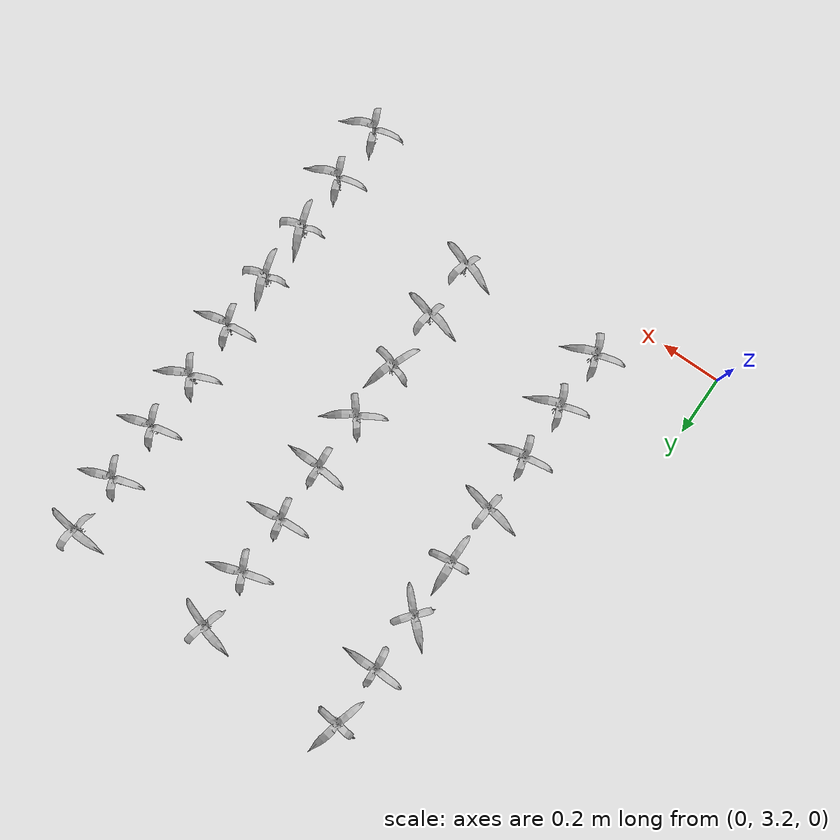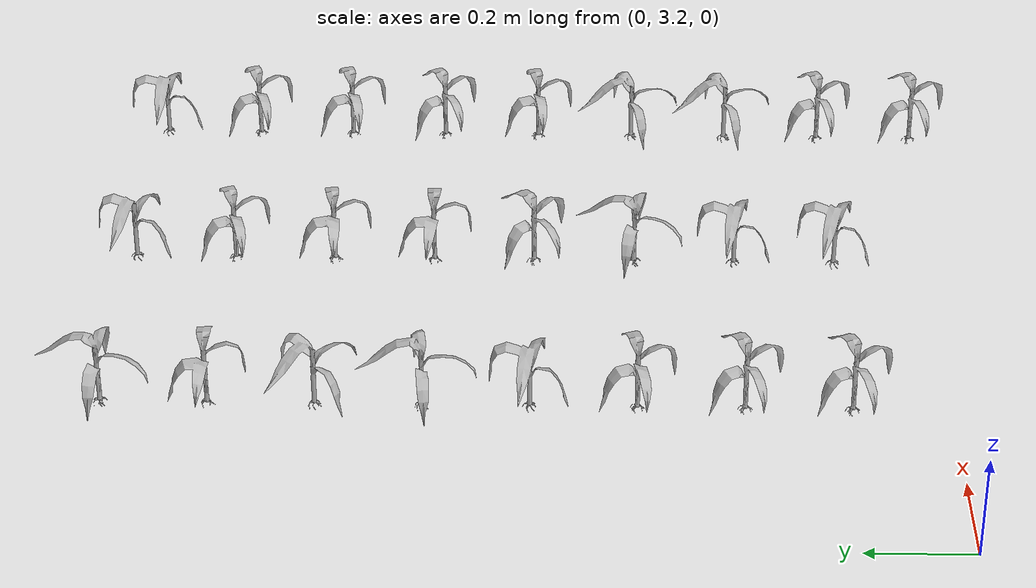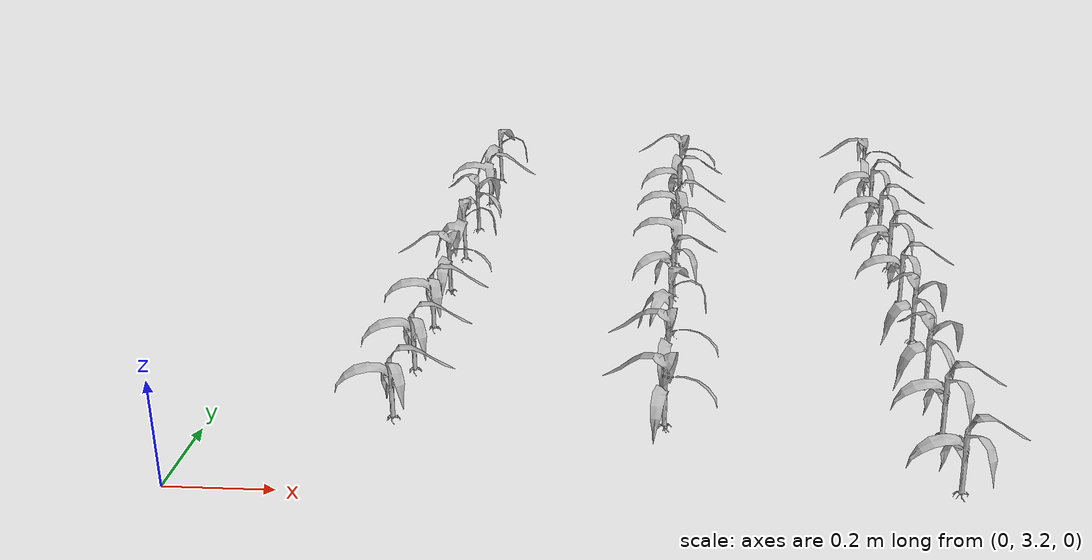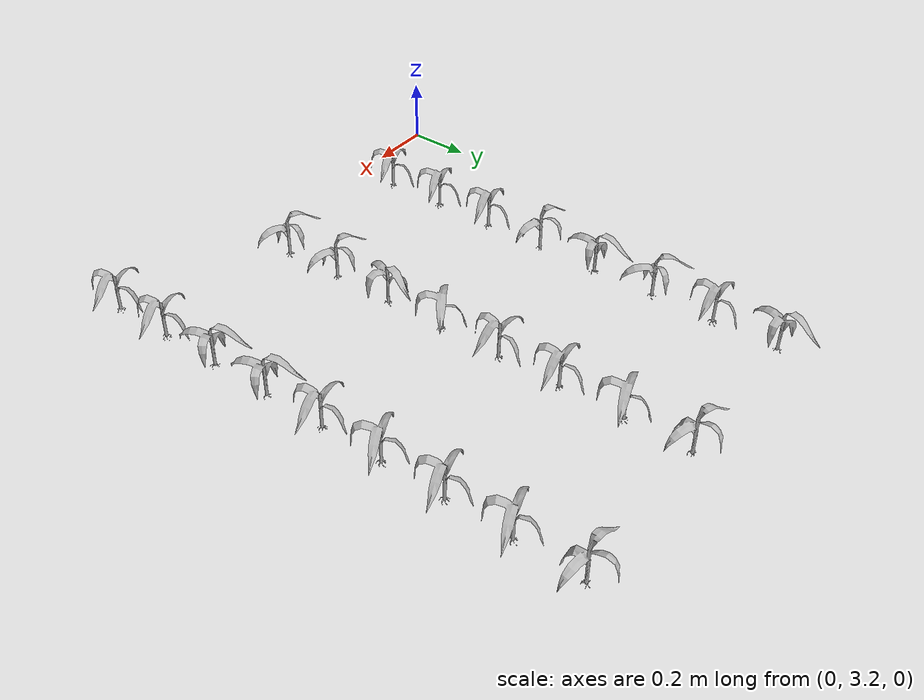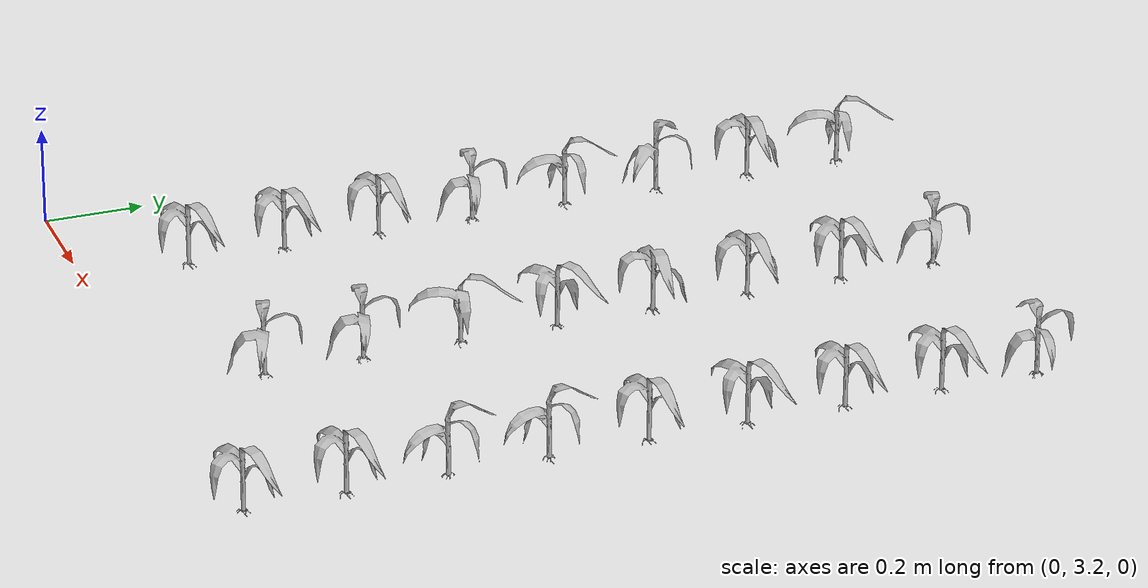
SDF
<sdf version="1.7">
 <world name="default">
  <model name="maize_0.36262630970692733_3.3899999999999997">
   <static>1</static>
   <link name="link">
    <inertial>
     <mass>0.2</mass>
     <inertia>
      <ixx>0.166667</ixx>
      <ixy>0</ixy>
      <ixz>0</ixz>
      <iyy>0.166667</iyy>
      <iyz>0</iyz>
      <izz>0.166667</izz>
     </inertia>
    </inertial>
    <collision name="collision">
     <geometry><mesh><uri>model://corn_3/meshes/corn.dae</uri><scale>0.25 0.25 0.25</scale></mesh></geometry>
     <surface>
      <friction><ode><mu>0</mu><mu2>0</mu2></ode></friction>
      <contact><ode><kp>0</kp><kd>0</kd><max_vel>0</max_vel><min_depth>0.002</min_depth></ode></contact>
     </surface>
    </collision>
    <visual name="visual">
     <geometry><mesh><uri>model://corn_3/meshes/corn.dae</uri><scale>0.25 0.25 0.25</scale></mesh></geometry>
    </visual>
    <velocity_decay><linear>0</linear><angular>0</angular></velocity_decay>
   </link>
   <pose>0.362626 3.39 0.05 0 -0 0.385405</pose>
  </model>
  <model name="maize_0.36262630970692733_3.585">
   <static>1</static>
   <link name="link">
    <inertial>
     <mass>0.2</mass>
     <inertia>
      <ixx>0.166667</ixx>
      <ixy>0</ixy>
      <ixz>0</ixz>
      <iyy>0.166667</iyy>
      <iyz>0</iyz>
      <izz>0.166667</izz>
     </inertia>
    </inertial>
    <collision name="collision">
     <geometry><mesh><uri>model://corn_3/meshes/corn.dae</uri><scale>0.25 0.25 0.25</scale></mesh></geometry>
     <surface>
      <friction><ode><mu>0</mu><mu2>0</mu2></ode></friction>
      <contact><ode><kp>0</kp><kd>0</kd><max_vel>0</max_vel><min_depth>0.002</min_depth></ode></contact>
     </surface>
    </collision>
    <visual name="visual">
     <geometry><mesh><uri>model://corn_3/meshes/corn.dae</uri><scale>0.25 0.25 0.25</scale></mesh></geometry>
    </visual>
    <velocity_decay><linear>0</linear><angular>0</angular></velocity_decay>
   </link>
   <pose>0.362626 3.585 0.05 0 -0 0.391481</pose>
  </model>
  <model name="maize_0.36262630970692733_3.7800000000000002">
   <static>1</static>
   <link name="link">
    <inertial>
     <mass>0.2</mass>
     <inertia>
      <ixx>0.166667</ixx>
      <ixy>0</ixy>
      <ixz>0</ixz>
      <iyy>0.166667</iyy>
      <iyz>0</iyz>
      <izz>0.166667</izz>
     </inertia>
    </inertial>
    <collision name="collision">
     <geometry><mesh><uri>model://corn_3/meshes/corn.dae</uri><scale>0.25 0.25 0.25</scale></mesh></geometry>
     <surface>
      <friction><ode><mu>0</mu><mu2>0</mu2></ode></friction>
      <contact><ode><kp>0</kp><kd>0</kd><max_vel>0</max_vel><min_depth>0.002</min_depth></ode></contact>
     </surface>
    </collision>
    <visual name="visual">
     <geometry><mesh><uri>model://corn_3/meshes/corn.dae</uri><scale>0.25 0.25 0.25</scale></mesh></geometry>
    </visual>
    <velocity_decay><linear>0</linear><angular>0</angular></velocity_decay>
   </link>
   <pose>0.362626 3.78 0.05 0 -0 0.270087</pose>
  </model>
  <model name="maize_0.36262630970692733_3.9750000000000005">
   <static>1</static>
   <link name="link">
    <inertial>
     <mass>0.2</mass>
     <inertia>
      <ixx>0.166667</ixx>
      <ixy>0</ixy>
      <ixz>0</ixz>
      <iyy>0.166667</iyy>
      <iyz>0</iyz>
      <izz>0.166667</izz>
     </inertia>
    </inertial>
    <collision name="collision">
     <geometry><mesh><uri>model://corn_3/meshes/corn.dae</uri><scale>0.25 0.25 0.25</scale></mesh></geometry>
     <surface>
      <friction><ode><mu>0</mu><mu2>0</mu2></ode></friction>
      <contact><ode><kp>0</kp><kd>0</kd><max_vel>0</max_vel><min_depth>0.002</min_depth></ode></contact>
     </surface>
    </collision>
    <visual name="visual">
     <geometry><mesh><uri>model://corn_3/meshes/corn.dae</uri><scale>0.25 0.25 0.25</scale></mesh></geometry>
    </visual>
    <velocity_decay><linear>0</linear><angular>0</angular></velocity_decay>
   </link>
   <pose>0.362626 3.975 0.05 0 -0 3.01482</pose>
  </model>
  <model name="maize_0.36262630970692733_4.170000000000001">
   <static>1</static>
   <link name="link">
    <inertial>
     <mass>0.2</mass>
     <inertia>
      <ixx>0.166667</ixx>
      <ixy>0</ixy>
      <ixz>0</ixz>
      <iyy>0.166667</iyy>
      <iyz>0</iyz>
      <izz>0.166667</izz>
     </inertia>
    </inertial>
    <collision name="collision">
     <geometry><mesh><uri>model://corn_3/meshes/corn.dae</uri><scale>0.25 0.25 0.25</scale></mesh></geometry>
     <surface>
      <friction><ode><mu>0</mu><mu2>0</mu2></ode></friction>
      <contact><ode><kp>0</kp><kd>0</kd><max_vel>0</max_vel><min_depth>0.002</min_depth></ode></contact>
     </surface>
    </collision>
    <visual name="visual">
     <geometry><mesh><uri>model://corn_3/meshes/corn.dae</uri><scale>0.25 0.25 0.25</scale></mesh></geometry>
    </visual>
    <velocity_decay><linear>0</linear><angular>0</angular></velocity_decay>
   </link>
   <pose>0.362626 4.17 0.05 0 -0 1.67805</pose>
  </model>
  <model name="maize_0.36262630970692733_4.365000000000001">
   <static>1</static>
   <link name="link">
    <inertial>
     <mass>0.2</mass>
     <inertia>
      <ixx>0.166667</ixx>
      <ixy>0</ixy>
      <ixz>0</ixz>
      <iyy>0.166667</iyy>
      <iyz>0</iyz>
      <izz>0.166667</izz>
     </inertia>
    </inertial>
    <collision name="collision">
     <geometry><mesh><uri>model://corn_3/meshes/corn.dae</uri><scale>0.25 0.25 0.25</scale></mesh></geometry>
     <surface>
      <friction><ode><mu>0</mu><mu2>0</mu2></ode></friction>
      <contact><ode><kp>0</kp><kd>0</kd><max_vel>0</max_vel><min_depth>0.002</min_depth></ode></contact>
     </surface>
    </collision>
    <visual name="visual">
     <geometry><mesh><uri>model://corn_3/meshes/corn.dae</uri><scale>0.25 0.25 0.25</scale></mesh></geometry>
    </visual>
    <velocity_decay><linear>0</linear><angular>0</angular></velocity_decay>
   </link>
   <pose>0.362626 4.365 0.05 0 -0 2.43685</pose>
  </model>
  <model name="maize_0.36262630970692733_4.56">
   <static>1</static>
   <link name="link">
    <inertial>
     <mass>0.2</mass>
     <inertia>
      <ixx>0.166667</ixx>
      <ixy>0</ixy>
      <ixz>0</ixz>
      <iyy>0.166667</iyy>
      <iyz>0</iyz>
      <izz>0.166667</izz>
     </inertia>
    </inertial>
    <collision name="collision">
     <geometry><mesh><uri>model://corn_3/meshes/corn.dae</uri><scale>0.25 0.25 0.25</scale></mesh></geometry>
     <surface>
      <friction><ode><mu>0</mu><mu2>0</mu2></ode></friction>
      <contact><ode><kp>0</kp><kd>0</kd><max_vel>0</max_vel><min_depth>0.002</min_depth></ode></contact>
     </surface>
    </collision>
    <visual name="visual">
     <geometry><mesh><uri>model://corn_3/meshes/corn.dae</uri><scale>0.25 0.25 0.25</scale></mesh></geometry>
    </visual>
    <velocity_decay><linear>0</linear><angular>0</angular></velocity_decay>
   </link>
   <pose>0.362626 4.56 0.05 0 -0 0.068655</pose>
  </model>
  <model name="maize_0.36262630970692733_4.755">
   <static>1</static>
   <link name="link">
    <inertial>
     <mass>0.2</mass>
     <inertia>
      <ixx>0.166667</ixx>
      <ixy>0</ixy>
      <ixz>0</ixz>
      <iyy>0.166667</iyy>
      <iyz>0</iyz>
      <izz>0.166667</izz>
     </inertia>
    </inertial>
    <collision name="collision">
     <geometry><mesh><uri>model://corn_3/meshes/corn.dae</uri><scale>0.25 0.25 0.25</scale></mesh></geometry>
     <surface>
      <friction><ode><mu>0</mu><mu2>0</mu2></ode></friction>
      <contact><ode><kp>0</kp><kd>0</kd><max_vel>0</max_vel><min_depth>0.002</min_depth></ode></contact>
     </surface>
    </collision>
    <visual name="visual">
     <geometry><mesh><uri>model://corn_3/meshes/corn.dae</uri><scale>0.25 0.25 0.25</scale></mesh></geometry>
    </visual>
    <velocity_decay><linear>0</linear><angular>0</angular></velocity_decay>
   </link>
   <pose>0.362626 4.755 0.05 0 -0 1.40358</pose>
  </model>
  <model name="maize_0.8547947739721122_3.3899999999999997">
   <static>1</static>
   <link name="link">
    <inertial>
     <mass>0.2</mass>
     <inertia>
      <ixx>0.166667</ixx>
      <ixy>0</ixy>
      <ixz>0</ixz>
      <iyy>0.166667</iyy>
      <iyz>0</iyz>
      <izz>0.166667</izz>
     </inertia>
    </inertial>
    <collision name="collision">
     <geometry><mesh><uri>model://corn_3/meshes/corn.dae</uri><scale>0.25 0.25 0.25</scale></mesh></geometry>
     <surface>
      <friction><ode><mu>0</mu><mu2>0</mu2></ode></friction>
      <contact><ode><kp>0</kp><kd>0</kd><max_vel>0</max_vel><min_depth>0.002</min_depth></ode></contact>
     </surface>
    </collision>
    <visual name="visual">
     <geometry><mesh><uri>model://corn_3/meshes/corn.dae</uri><scale>0.25 0.25 0.25</scale></mesh></geometry>
    </visual>
    <velocity_decay><linear>0</linear><angular>0</angular></velocity_decay>
   </link>
   <pose>0.854795 3.39 0.05 0 -0 2.89235</pose>
  </model>
  <model name="maize_0.8547947739721122_3.585">
   <static>1</static>
   <link name="link">
    <inertial>
     <mass>0.2</mass>
     <inertia>
      <ixx>0.166667</ixx>
      <ixy>0</ixy>
      <ixz>0</ixz>
      <iyy>0.166667</iyy>
      <iyz>0</iyz>
      <izz>0.166667</izz>
     </inertia>
    </inertial>
    <collision name="collision">
     <geometry><mesh><uri>model://corn_3/meshes/corn.dae</uri><scale>0.25 0.25 0.25</scale></mesh></geometry>
     <surface>
      <friction><ode><mu>0</mu><mu2>0</mu2></ode></friction>
      <contact><ode><kp>0</kp><kd>0</kd><max_vel>0</max_vel><min_depth>0.002</min_depth></ode></contact>
     </surface>
    </collision>
    <visual name="visual">
     <geometry><mesh><uri>model://corn_3/meshes/corn.dae</uri><scale>0.25 0.25 0.25</scale></mesh></geometry>
    </visual>
    <velocity_decay><linear>0</linear><angular>0</angular></velocity_decay>
   </link>
   <pose>0.854795 3.585 0.05 0 -0 2.98907</pose>
  </model>
  <model name="maize_0.8547947739721122_3.7800000000000002">
   <static>1</static>
   <link name="link">
    <inertial>
     <mass>0.2</mass>
     <inertia>
      <ixx>0.166667</ixx>
      <ixy>0</ixy>
      <ixz>0</ixz>
      <iyy>0.166667</iyy>
      <iyz>0</iyz>
      <izz>0.166667</izz>
     </inertia>
    </inertial>
    <collision name="collision">
     <geometry><mesh><uri>model://corn_3/meshes/corn.dae</uri><scale>0.25 0.25 0.25</scale></mesh></geometry>
     <surface>
      <friction><ode><mu>0</mu><mu2>0</mu2></ode></friction>
      <contact><ode><kp>0</kp><kd>0</kd><max_vel>0</max_vel><min_depth>0.002</min_depth></ode></contact>
     </surface>
    </collision>
    <visual name="visual">
     <geometry><mesh><uri>model://corn_3/meshes/corn.dae</uri><scale>0.25 0.25 0.25</scale></mesh></geometry>
    </visual>
    <velocity_decay><linear>0</linear><angular>0</angular></velocity_decay>
   </link>
   <pose>0.854795 3.78 0.05 0 -0 1.29704</pose>
  </model>
  <model name="maize_0.8547947739721122_3.9750000000000005">
   <static>1</static>
   <link name="link">
    <inertial>
     <mass>0.2</mass>
     <inertia>
      <ixx>0.166667</ixx>
      <ixy>0</ixy>
      <ixz>0</ixz>
      <iyy>0.166667</iyy>
      <iyz>0</iyz>
      <izz>0.166667</izz>
     </inertia>
    </inertial>
    <collision name="collision">
     <geometry><mesh><uri>model://corn_3/meshes/corn.dae</uri><scale>0.25 0.25 0.25</scale></mesh></geometry>
     <surface>
      <friction><ode><mu>0</mu><mu2>0</mu2></ode></friction>
      <contact><ode><kp>0</kp><kd>0</kd><max_vel>0</max_vel><min_depth>0.002</min_depth></ode></contact>
     </surface>
    </collision>
    <visual name="visual">
     <geometry><mesh><uri>model://corn_3/meshes/corn.dae</uri><scale>0.25 0.25 0.25</scale></mesh></geometry>
    </visual>
    <velocity_decay><linear>0</linear><angular>0</angular></velocity_decay>
   </link>
   <pose>0.854795 3.975 0.05 0 -0 0.643083</pose>
  </model>
  <model name="maize_0.8547947739721122_4.170000000000001">
   <static>1</static>
   <link name="link">
    <inertial>
     <mass>0.2</mass>
     <inertia>
      <ixx>0.166667</ixx>
      <ixy>0</ixy>
      <ixz>0</ixz>
      <iyy>0.166667</iyy>
      <iyz>0</iyz>
      <izz>0.166667</izz>
     </inertia>
    </inertial>
    <collision name="collision">
     <geometry><mesh><uri>model://corn_3/meshes/corn.dae</uri><scale>0.25 0.25 0.25</scale></mesh></geometry>
     <surface>
      <friction><ode><mu>0</mu><mu2>0</mu2></ode></friction>
      <contact><ode><kp>0</kp><kd>0</kd><max_vel>0</max_vel><min_depth>0.002</min_depth></ode></contact>
     </surface>
    </collision>
    <visual name="visual">
     <geometry><mesh><uri>model://corn_3/meshes/corn.dae</uri><scale>0.25 0.25 0.25</scale></mesh></geometry>
    </visual>
    <velocity_decay><linear>0</linear><angular>0</angular></velocity_decay>
   </link>
   <pose>0.854795 4.17 0.05 0 -0 0.013578</pose>
  </model>
  <model name="maize_0.8547947739721122_4.365000000000001">
   <static>1</static>
   <link name="link">
    <inertial>
     <mass>0.2</mass>
     <inertia>
      <ixx>0.166667</ixx>
      <ixy>0</ixy>
      <ixz>0</ixz>
      <iyy>0.166667</iyy>
      <iyz>0</iyz>
      <izz>0.166667</izz>
     </inertia>
    </inertial>
    <collision name="collision">
     <geometry><mesh><uri>model://corn_3/meshes/corn.dae</uri><scale>0.25 0.25 0.25</scale></mesh></geometry>
     <surface>
      <friction><ode><mu>0</mu><mu2>0</mu2></ode></friction>
      <contact><ode><kp>0</kp><kd>0</kd><max_vel>0</max_vel><min_depth>0.002</min_depth></ode></contact>
     </surface>
    </collision>
    <visual name="visual">
     <geometry><mesh><uri>model://corn_3/meshes/corn.dae</uri><scale>0.25 0.25 0.25</scale></mesh></geometry>
    </visual>
    <velocity_decay><linear>0</linear><angular>0</angular></velocity_decay>
   </link>
   <pose>0.854795 4.365 0.05 0 -0 0.166583</pose>
  </model>
  <model name="maize_0.8547947739721122_4.56">
   <static>1</static>
   <link name="link">
    <inertial>
     <mass>0.2</mass>
     <inertia>
      <ixx>0.166667</ixx>
      <ixy>0</ixy>
      <ixz>0</ixz>
      <iyy>0.166667</iyy>
      <iyz>0</iyz>
      <izz>0.166667</izz>
     </inertia>
    </inertial>
    <collision name="collision">
     <geometry><mesh><uri>model://corn_3/meshes/corn.dae</uri><scale>0.25 0.25 0.25</scale></mesh></geometry>
     <surface>
      <friction><ode><mu>0</mu><mu2>0</mu2></ode></friction>
      <contact><ode><kp>0</kp><kd>0</kd><max_vel>0</max_vel><min_depth>0.002</min_depth></ode></contact>
     </surface>
    </collision>
    <visual name="visual">
     <geometry><mesh><uri>model://corn_3/meshes/corn.dae</uri><scale>0.25 0.25 0.25</scale></mesh></geometry>
    </visual>
    <velocity_decay><linear>0</linear><angular>0</angular></velocity_decay>
   </link>
   <pose>0.854795 4.56 0.05 0 -0 0.377136</pose>
  </model>
  <model name="maize_0.8547947739721122_4.755">
   <static>1</static>
   <link name="link">
    <inertial>
     <mass>0.2</mass>
     <inertia>
      <ixx>0.166667</ixx>
      <ixy>0</ixy>
      <ixz>0</ixz>
      <iyy>0.166667</iyy>
      <iyz>0</iyz>
      <izz>0.166667</izz>
     </inertia>
    </inertial>
    <collision name="collision">
     <geometry><mesh><uri>model://corn_3/meshes/corn.dae</uri><scale>0.25 0.25 0.25</scale></mesh></geometry>
     <surface>
      <friction><ode><mu>0</mu><mu2>0</mu2></ode></friction>
      <contact><ode><kp>0</kp><kd>0</kd><max_vel>0</max_vel><min_depth>0.002</min_depth></ode></contact>
     </surface>
    </collision>
    <visual name="visual">
     <geometry><mesh><uri>model://corn_3/meshes/corn.dae</uri><scale>0.25 0.25 0.25</scale></mesh></geometry>
    </visual>
    <velocity_decay><linear>0</linear><angular>0</angular></velocity_decay>
   </link>
   <pose>0.854795 4.755 0.05 0 -0 2.89961</pose>
  </model>
  <model name="maize_1.346222194063599_3.1950000000000003">
   <static>1</static>
   <link name="link">
    <inertial>
     <mass>0.2</mass>
     <inertia>
      <ixx>0.166667</ixx>
      <ixy>0</ixy>
      <ixz>0</ixz>
      <iyy>0.166667</iyy>
      <iyz>0</iyz>
      <izz>0.166667</izz>
     </inertia>
    </inertial>
    <collision name="collision">
     <geometry><mesh><uri>model://corn_3/meshes/corn.dae</uri><scale>0.25 0.25 0.25</scale></mesh></geometry>
     <surface>
      <friction><ode><mu>0</mu><mu2>0</mu2></ode></friction>
      <contact><ode><kp>0</kp><kd>0</kd><max_vel>0</max_vel><min_depth>0.002</min_depth></ode></contact>
     </surface>
    </collision>
    <visual name="visual">
     <geometry><mesh><uri>model://corn_3/meshes/corn.dae</uri><scale>0.25 0.25 0.25</scale></mesh></geometry>
    </visual>
    <velocity_decay><linear>0</linear><angular>0</angular></velocity_decay>
   </link>
   <pose>1.34622 3.195 0.05 0 -0 0.364409</pose>
  </model>
  <model name="maize_1.346222194063599_3.3899999999999997">
   <static>1</static>
   <link name="link">
    <inertial>
     <mass>0.2</mass>
     <inertia>
      <ixx>0.166667</ixx>
      <ixy>0</ixy>
      <ixz>0</ixz>
      <iyy>0.166667</iyy>
      <iyz>0</iyz>
      <izz>0.166667</izz>
     </inertia>
    </inertial>
    <collision name="collision">
     <geometry><mesh><uri>model://corn_3/meshes/corn.dae</uri><scale>0.25 0.25 0.25</scale></mesh></geometry>
     <surface>
      <friction><ode><mu>0</mu><mu2>0</mu2></ode></friction>
      <contact><ode><kp>0</kp><kd>0</kd><max_vel>0</max_vel><min_depth>0.002</min_depth></ode></contact>
     </surface>
    </collision>
    <visual name="visual">
     <geometry><mesh><uri>model://corn_3/meshes/corn.dae</uri><scale>0.25 0.25 0.25</scale></mesh></geometry>
    </visual>
    <velocity_decay><linear>0</linear><angular>0</angular></velocity_decay>
   </link>
   <pose>1.34622 3.39 0.05 0 -0 0.349506</pose>
  </model>
  <model name="maize_1.346222194063599_3.585">
   <static>1</static>
   <link name="link">
    <inertial>
     <mass>0.2</mass>
     <inertia>
      <ixx>0.166667</ixx>
      <ixy>0</ixy>
      <ixz>0</ixz>
      <iyy>0.166667</iyy>
      <iyz>0</iyz>
      <izz>0.166667</izz>
     </inertia>
    </inertial>
    <collision name="collision">
     <geometry><mesh><uri>model://corn_3/meshes/corn.dae</uri><scale>0.25 0.25 0.25</scale></mesh></geometry>
     <surface>
      <friction><ode><mu>0</mu><mu2>0</mu2></ode></friction>
      <contact><ode><kp>0</kp><kd>0</kd><max_vel>0</max_vel><min_depth>0.002</min_depth></ode></contact>
     </surface>
    </collision>
    <visual name="visual">
     <geometry><mesh><uri>model://corn_3/meshes/corn.dae</uri><scale>0.25 0.25 0.25</scale></mesh></geometry>
    </visual>
    <velocity_decay><linear>0</linear><angular>0</angular></velocity_decay>
   </link>
   <pose>1.34622 3.585 0.05 0 -0 1.99451</pose>
  </model>
  <model name="maize_1.346222194063599_3.7800000000000002">
   <static>1</static>
   <link name="link">
    <inertial>
     <mass>0.2</mass>
     <inertia>
      <ixx>0.166667</ixx>
      <ixy>0</ixy>
      <ixz>0</ixz>
      <iyy>0.166667</iyy>
      <iyz>0</iyz>
      <izz>0.166667</izz>
     </inertia>
    </inertial>
    <collision name="collision">
     <geometry><mesh><uri>model://corn_3/meshes/corn.dae</uri><scale>0.25 0.25 0.25</scale></mesh></geometry>
     <surface>
      <friction><ode><mu>0</mu><mu2>0</mu2></ode></friction>
      <contact><ode><kp>0</kp><kd>0</kd><max_vel>0</max_vel><min_depth>0.002</min_depth></ode></contact>
     </surface>
    </collision>
    <visual name="visual">
     <geometry><mesh><uri>model://corn_3/meshes/corn.dae</uri><scale>0.25 0.25 0.25</scale></mesh></geometry>
    </visual>
    <velocity_decay><linear>0</linear><angular>0</angular></velocity_decay>
   </link>
   <pose>1.34622 3.78 0.05 0 -0 1.95962</pose>
  </model>
  <model name="maize_1.346222194063599_3.9750000000000005">
   <static>1</static>
   <link name="link">
    <inertial>
     <mass>0.2</mass>
     <inertia>
      <ixx>0.166667</ixx>
      <ixy>0</ixy>
      <ixz>0</ixz>
      <iyy>0.166667</iyy>
      <iyz>0</iyz>
      <izz>0.166667</izz>
     </inertia>
    </inertial>
    <collision name="collision">
     <geometry><mesh><uri>model://corn_3/meshes/corn.dae</uri><scale>0.25 0.25 0.25</scale></mesh></geometry>
     <surface>
      <friction><ode><mu>0</mu><mu2>0</mu2></ode></friction>
      <contact><ode><kp>0</kp><kd>0</kd><max_vel>0</max_vel><min_depth>0.002</min_depth></ode></contact>
     </surface>
    </collision>
    <visual name="visual">
     <geometry><mesh><uri>model://corn_3/meshes/corn.dae</uri><scale>0.25 0.25 0.25</scale></mesh></geometry>
    </visual>
    <velocity_decay><linear>0</linear><angular>0</angular></velocity_decay>
   </link>
   <pose>1.34622 3.975 0.05 0 -0 0.235217</pose>
  </model>
  <model name="maize_1.346222194063599_4.170000000000001">
   <static>1</static>
   <link name="link">
    <inertial>
     <mass>0.2</mass>
     <inertia>
      <ixx>0.166667</ixx>
      <ixy>0</ixy>
      <ixz>0</ixz>
      <iyy>0.166667</iyy>
      <iyz>0</iyz>
      <izz>0.166667</izz>
     </inertia>
    </inertial>
    <collision name="collision">
     <geometry><mesh><uri>model://corn_3/meshes/corn.dae</uri><scale>0.25 0.25 0.25</scale></mesh></geometry>
     <surface>
      <friction><ode><mu>0</mu><mu2>0</mu2></ode></friction>
      <contact><ode><kp>0</kp><kd>0</kd><max_vel>0</max_vel><min_depth>0.002</min_depth></ode></contact>
     </surface>
    </collision>
    <visual name="visual">
     <geometry><mesh><uri>model://corn_3/meshes/corn.dae</uri><scale>0.25 0.25 0.25</scale></mesh></geometry>
    </visual>
    <velocity_decay><linear>0</linear><angular>0</angular></velocity_decay>
   </link>
   <pose>1.34622 4.17 0.05 0 -0 0.503614</pose>
  </model>
  <model name="maize_1.346222194063599_4.365000000000001">
   <static>1</static>
   <link name="link">
    <inertial>
     <mass>0.2</mass>
     <inertia>
      <ixx>0.166667</ixx>
      <ixy>0</ixy>
      <ixz>0</ixz>
      <iyy>0.166667</iyy>
      <iyz>0</iyz>
      <izz>0.166667</izz>
     </inertia>
    </inertial>
    <collision name="collision">
     <geometry><mesh><uri>model://corn_3/meshes/corn.dae</uri><scale>0.25 0.25 0.25</scale></mesh></geometry>
     <surface>
      <friction><ode><mu>0</mu><mu2>0</mu2></ode></friction>
      <contact><ode><kp>0</kp><kd>0</kd><max_vel>0</max_vel><min_depth>0.002</min_depth></ode></contact>
     </surface>
    </collision>
    <visual name="visual">
     <geometry><mesh><uri>model://corn_3/meshes/corn.dae</uri><scale>0.25 0.25 0.25</scale></mesh></geometry>
    </visual>
    <velocity_decay><linear>0</linear><angular>0</angular></velocity_decay>
   </link>
   <pose>1.34622 4.365 0.05 0 -0 0.329588</pose>
  </model>
  <model name="maize_1.346222194063599_4.56">
   <static>1</static>
   <link name="link">
    <inertial>
     <mass>0.2</mass>
     <inertia>
      <ixx>0.166667</ixx>
      <ixy>0</ixy>
      <ixz>0</ixz>
      <iyy>0.166667</iyy>
      <iyz>0</iyz>
      <izz>0.166667</izz>
     </inertia>
    </inertial>
    <collision name="collision">
     <geometry><mesh><uri>model://corn_3/meshes/corn.dae</uri><scale>0.25 0.25 0.25</scale></mesh></geometry>
     <surface>
      <friction><ode><mu>0</mu><mu2>0</mu2></ode></friction>
      <contact><ode><kp>0</kp><kd>0</kd><max_vel>0</max_vel><min_depth>0.002</min_depth></ode></contact>
     </surface>
    </collision>
    <visual name="visual">
     <geometry><mesh><uri>model://corn_3/meshes/corn.dae</uri><scale>0.25 0.25 0.25</scale></mesh></geometry>
    </visual>
    <velocity_decay><linear>0</linear><angular>0</angular></velocity_decay>
   </link>
   <pose>1.34622 4.56 0.05 0 -0 0.394901</pose>
  </model>
  <model name="maize_1.346222194063599_4.755">
   <static>1</static>
   <link name="link">
    <inertial>
     <mass>0.2</mass>
     <inertia>
      <ixx>0.166667</ixx>
      <ixy>0</ixy>
      <ixz>0</ixz>
      <iyy>0.166667</iyy>
      <iyz>0</iyz>
      <izz>0.166667</izz>
     </inertia>
    </inertial>
    <collision name="collision">
     <geometry><mesh><uri>model://corn_3/meshes/corn.dae</uri><scale>0.25 0.25 0.25</scale></mesh></geometry>
     <surface>
      <friction><ode><mu>0</mu><mu2>0</mu2></ode></friction>
      <contact><ode><kp>0</kp><kd>0</kd><max_vel>0</max_vel><min_depth>0.002</min_depth></ode></contact>
     </surface>
    </collision>
    <visual name="visual">
     <geometry><mesh><uri>model://corn_3/meshes/corn.dae</uri><scale>0.25 0.25 0.25</scale></mesh></geometry>
    </visual>
    <velocity_decay><linear>0</linear><angular>0</angular></velocity_decay>
   </link>
   <pose>1.34622 4.755 0.05 0 -0 3.11317</pose>
  </model>
 </world>
</sdf>
